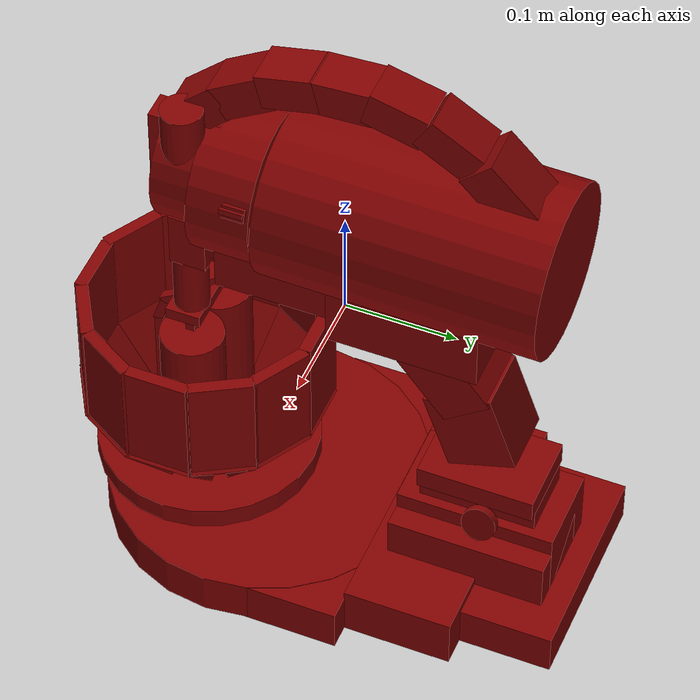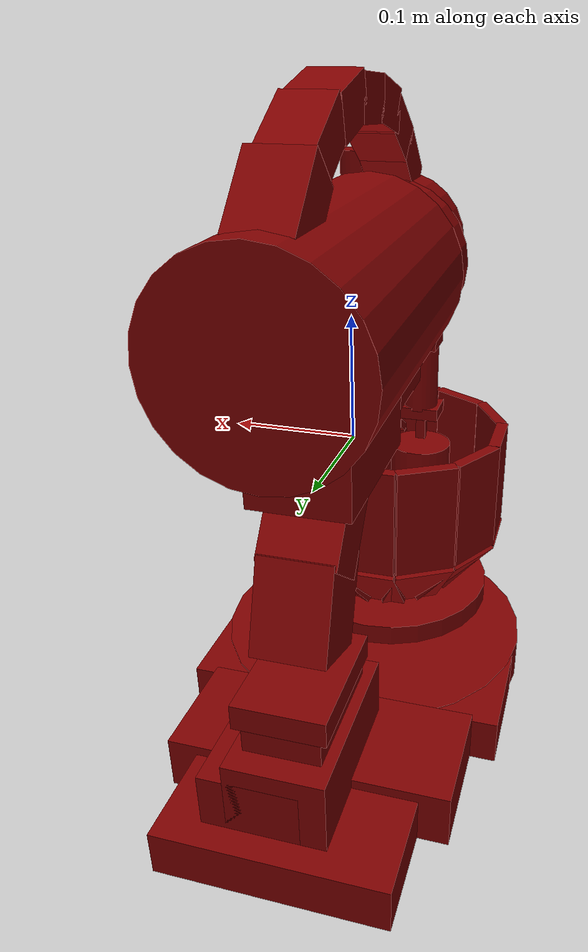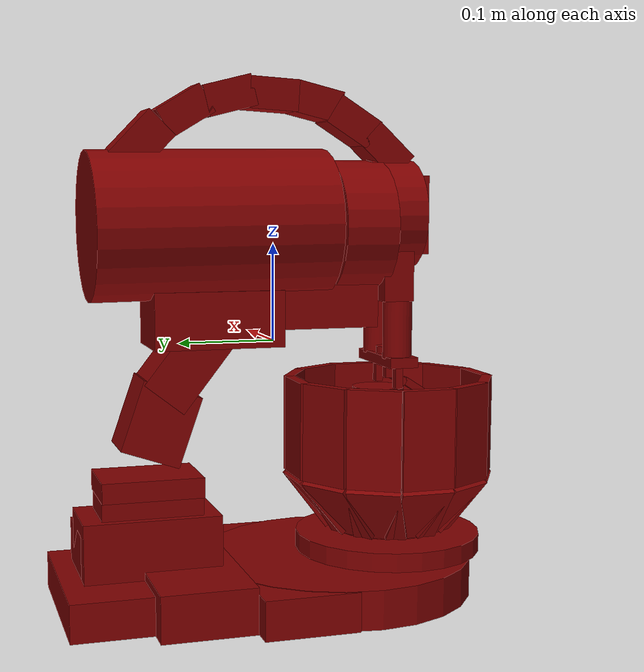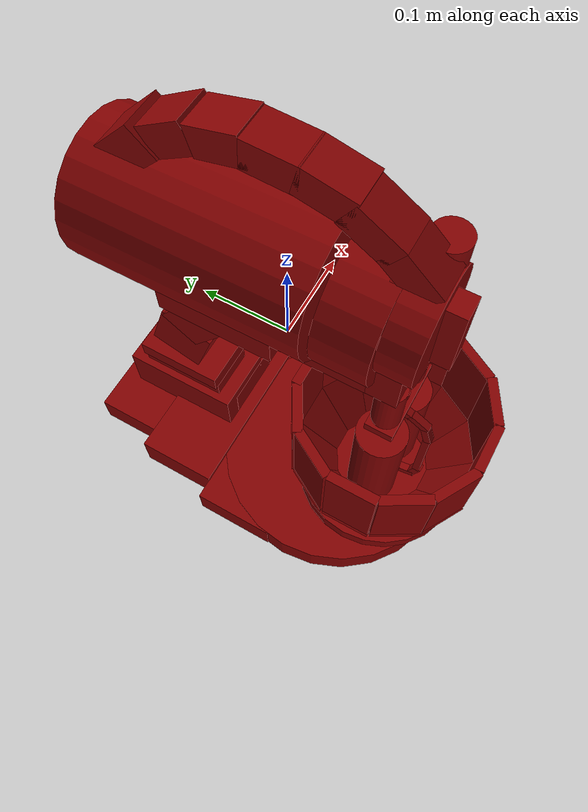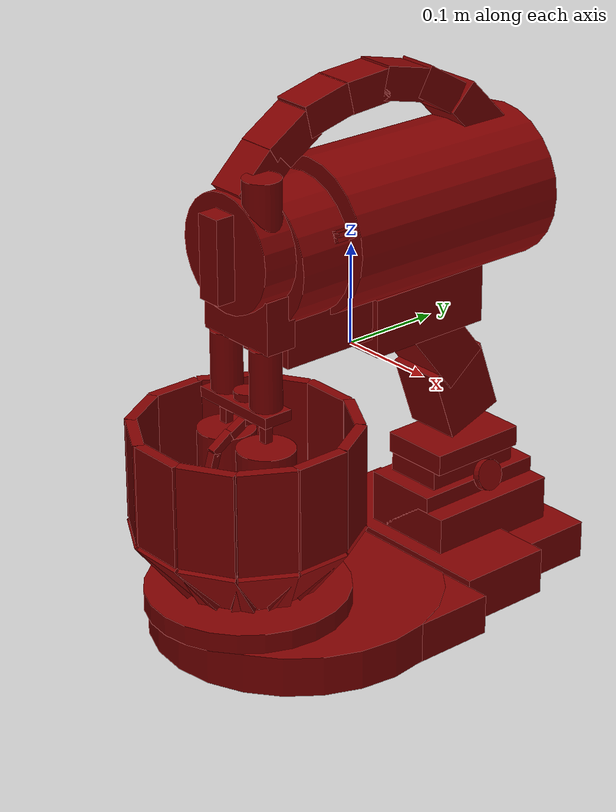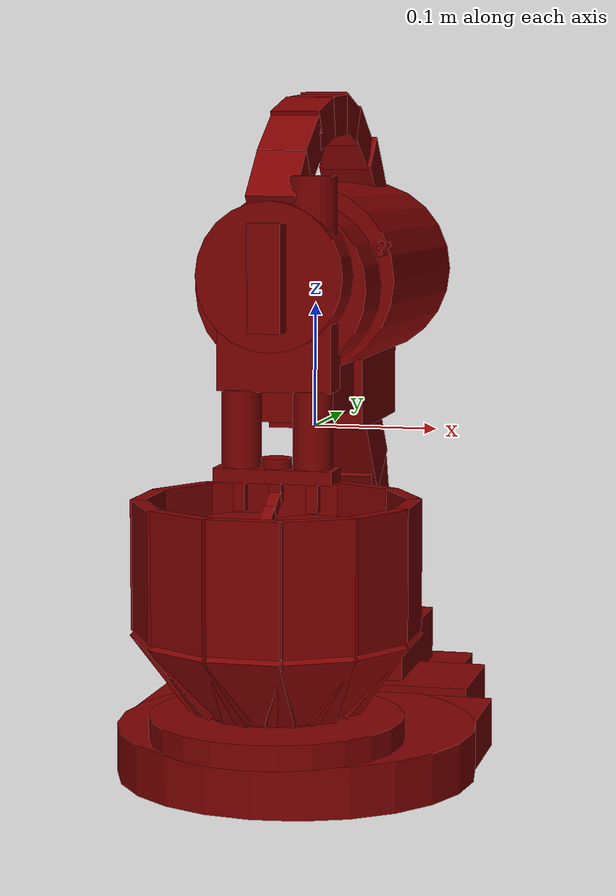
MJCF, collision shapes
<?xml version='1.0' encoding='UTF-8'?>
<mujoco model="model">
  <option timestep="0.002" gravity="0.0 0.0 -9.81"/>
  <compiler angle="radian"/>
  <asset>
    <mesh file="visuals/Blender001.obj" name="Blender001_vis"/>
    <mesh file="visuals/Blender002.obj" name="Blender002_vis"/>
    <mesh file="visuals/Body001.obj" name="Body001_vis"/>
    <mesh file="visuals/Button001.obj" name="Button001_vis"/>
    <mesh file="visuals/Container001.obj" name="Container001_vis"/>
    <mesh file="visuals/Knob001.obj" name="Knob001_vis"/>
    <mesh file="visuals/Lid001.obj" name="Lid001_vis"/>
    <texture file="visuals/T_BC001.png" name="Body001_material" type="2d"/>
    <material name="Body001_material" rgba="1 1 1 1.0" texture="Body001_material" shininess="0.5" specular="0.3103448502657381"/>
    <texture file="visuals/T_BC001.png" name="Button001_material" type="2d"/>
    <material name="Button001_material" rgba="1 1 1 1.0" texture="Button001_material" shininess="0.5" specular="0.3103448502657381"/>
    <texture file="visuals/T_BC001.png" name="Container001_material" type="2d"/>
    <material name="Container001_material" rgba="1 1 1 1.0" texture="Container001_material" shininess="0.5" specular="2"/>
    <texture file="visuals/T_BC001.png" name="Lid001_material" type="2d"/>
    <material name="Lid001_material" rgba="1 1 1 1.0" texture="Lid001_material" shininess="0.5" specular="0.3103448502657381"/>
    <texture file="visuals/T_BC001.png" name="Blender001_material" type="2d"/>
    <material name="Blender001_material" rgba="1 1 1 1.0" texture="Blender001_material" shininess="0.5" specular="1"/>
    <texture file="visuals/T_BC001.png" name="Blender002_material" type="2d"/>
    <material name="Blender002_material" rgba="1 1 1 1.0" texture="Blender002_material" shininess="0.5" specular="1"/>
    <texture file="visuals/T_BC001.png" name="Knob001_material" type="2d"/>
    <material name="Knob001_material" rgba="1 1 1 1.0" texture="Knob001_material" shininess="0.5" specular="0.5"/>
  </asset>
  <default>
    <default class="visual">
      <geom conaffinity="0" contype="0" group="1" type="mesh"/>
    </default>
    <default class="collision">
      <geom group="0" rgba="0.5 0 0 0.5"/>
    </default>
    <default class="spawn">
      <geom group="0" rgba="1 1 1 0.5" contype="0" conaffinity="0"/>
      <site group="0" rgba="1 1 1 0.5"/>
    </default>
    <default class="region">
      <geom group="1" conaffinity="0" contype="0" rgba="0 1 0 0"/>
    </default>
  </default>
  <worldbody>
    <body>
      <body name="object">
        <geom mesh="Body001_vis" type="mesh" solimp="0.998 0.998 0.001" solref="0.001 1" friction="0.95 0.3 0.1" class="visual" material="Body001_material"/>
        <geom class="collision" type="cylinder" pos="0.000000 -0.128824 -0.220151" size="0.0993005633354187 0.009739317931234837" quat="0.7071067094802856 0.0 0.0 -0.7071068286895752" density="1000.0"/>
        <geom class="collision" type="cylinder" pos="0.001597 -0.070675 -0.250930" size="0.14353418350219727 0.01999838836491108" quat="0.7071067094802856 0.0 0.0 -0.7071068286895752" density="1000.0"/>
        <geom class="collision" type="box" pos="0.000000 0.000310 -0.251610" size="0.13999146223068237 0.048502832651138306 0.02011392079293728" quat="1.0 0.0 0.0 0.0" density="1000.0"/>
        <geom class="collision" type="box" pos="0.000000 0.096778 -0.248472" size="0.11802537739276886 0.048502132296562195 0.023700427263975143" quat="1.0 0.0 0.0 0.0" density="1000.0"/>
        <geom class="collision" type="box" pos="0.000000 0.185658 -0.252689" size="0.09285704791545868 0.0422094464302063 0.019484205171465874" quat="1.0 0.0 0.0 0.0" density="1000.0"/>
        <geom class="collision" type="box" pos="0.000000 0.135393 -0.203240" size="0.039346687495708466 0.07086953520774841 0.030786722898483276" quat="1.0 0.0 0.0 0.0" density="1000.0"/>
        <geom class="collision" type="box" pos="0.000000 0.134133 -0.152800" size="0.030359217897057533 0.05225202068686485 0.019947011023759842" quat="1.0 0.0 0.0 0.0" density="1000.0"/>
        <geom class="collision" type="box" pos="0.020409 0.135393 -0.211077" size="0.03934694454073906 0.07086953520774841 0.022950543090701103" quat="1.0 0.0 0.0 0.0" density="1000.0"/>
        <geom class="collision" type="box" pos="0.001605 0.134133 -0.143237" size="0.03636309504508972 0.0522521436214447 0.010446240194141865" quat="1.0 0.0 0.0 0.0" density="1000.0"/>
        <body name="Button001">
          <joint axis="-0.972398042678833 0.0 -0.23332831263542175" pos="0.040669 0.141369 -0.170450" limited="true" name="Button001_joint" range="0.0 0.003" type="slide" damping="1" frictionloss="1" armature=".01" stiffness="0.5" springref="-0.5"/>
          <geom mesh="Button001_vis" type="mesh" solimp="0.998 0.998 0.001" solref="0.001 1" friction="0.95 0.3 0.1" class="visual" material="Button001_material"/>
          <geom class="collision" type="cylinder" pos="0.043666 0.141795 -0.169974" size="0.015489477664232254 0.003840031800791621" quat="0.8005008101463318 -1.8275068125461758e-09 0.5993316769599915 2.5640383150005164e-09" density="1000.0"/>
        </body>
        <body name="Container001">
          <joint axis="0.0 0.0 1.0" pos="0.000000 -0.128824 -0.151364" limited="true" name="Container001_joint" range="0.0 0.05" type="slide" damping="1" frictionloss="1" armature=".01" stiffness="0.05"/>
          <geom mesh="Container001_vis" type="mesh" solimp="0.998 0.998 0.001" solref="0.001 1" friction="0.95 0.3 0.1" class="visual" material="Container001_material"/>
          <geom class="collision" type="cylinder" pos="0.000000 -0.128824 -0.204750" size="0.05979258567094803 0.0018684215610846877" quat="0.70710688829422 0.0 0.0 0.7071066498756409" density="1000.0"/>
          <geom class="collision" type="box" pos="0.002113 -0.231572 -0.092889" size="0.027677712962031364 0.005457268562167883 0.05090999975800514" quat="1.0 0.0 0.0 0.0" density="1000.0"/>
          <geom class="collision" type="box" pos="0.002113 -0.210162 -0.172863" size="0.005457259714603424 0.027677705511450768 0.037360746413469315" quat="0.6654353141784668 0.23915646970272064 -0.23915639519691467 0.6654353737831116" density="1000.0"/>
          <geom class="collision" type="box" pos="-0.049544 -0.218863 -0.092889" size="0.005457259714603424 0.027677711099386215 0.05090999975800514" quat="0.866025447845459 0.0 0.0 0.4999999701976776" density="1000.0"/>
          <geom class="collision" type="box" pos="-0.038839 -0.200321 -0.172863" size="0.005457259714603424 0.027677707374095917 0.037360746413469315" quat="0.8149885535240173 0.16910913586616516 -0.29290568828582764 0.4705337584018707" density="1000.0"/>
          <geom class="collision" type="box" pos="-0.087926 -0.182028 -0.092889" size="0.005457259714603424 0.027677709236741066 0.05091000348329544" quat="0.9659258127212524 0.0 0.0 0.2588190734386444" density="1000.0"/>
          <geom class="collision" type="box" pos="-0.069384 -0.171323 -0.172863" size="0.005457259714603424 0.027677705511450768 0.037360746413469315" quat="0.9090015888214111 0.08753731846809387 -0.3266938328742981 0.24356621503829956" density="1000.0"/>
          <geom class="collision" type="box" pos="-0.102748 -0.130937 -0.092889" size="0.005457266233861446 0.027677709236741066 0.05090999975800514" quat="1.0 0.0 0.0 0.0" density="1000.0"/>
          <geom class="collision" type="box" pos="-0.081338 -0.130937 -0.172863" size="0.005457259714603424 0.027677705511450768 0.037360746413469315" quat="0.9410676956176758 -1.4864680153436893e-08 -0.3382182717323303 -5.418909765353419e-08" density="1000.0"/>
          <geom class="collision" type="box" pos="-0.090039 -0.079280 -0.092889" size="0.005457259714603424 0.027677711099386215 0.05090999975800514" quat="0.9659258127212524 0.0 0.0 -0.2588191032409668" density="1000.0"/>
          <geom class="collision" type="box" pos="-0.071497 -0.089985 -0.172863" size="0.005457259714603424 0.027677705511450768 0.037360746413469315" quat="0.9090015888214111 -0.08753730356693268 -0.3266937732696533 -0.24356628954410553" density="1000.0"/>
          <geom class="collision" type="box" pos="-0.053204 -0.040898 -0.092889" size="0.005457259248942137 0.027677711099386215 0.05090999975800514" quat="0.8660253882408142 0.0 0.0 -0.5" density="1000.0"/>
          <geom class="collision" type="box" pos="-0.042499 -0.059440 -0.172863" size="0.005457259714603424 0.027677705511450768 0.037360746413469315" quat="0.8149885535240173 -0.16910910606384277 -0.2929055988788605 -0.4705338180065155" density="1000.0"/>
          <geom class="collision" type="box" pos="-0.002113 -0.026076 -0.092889" size="0.027677712962031364 0.005457268562167883 0.05090999975800514" quat="1.0 0.0 0.0 0.0" density="1000.0"/>
          <geom class="collision" type="box" pos="-0.002113 -0.047486 -0.172863" size="0.005457259714603424 0.027677705511450768 0.037360746413469315" quat="0.6654351949691772 -0.23915646970272064 -0.23915639519691467 -0.6654354929924011" density="1000.0"/>
          <geom class="collision" type="box" pos="0.049544 -0.038785 -0.092889" size="0.005457260180264711 0.027677711099386215 0.05091000348329544" quat="0.4999999701976776 0.0 0.0 -0.866025447845459" density="1000.0"/>
          <geom class="collision" type="box" pos="0.038839 -0.057327 -0.172863" size="0.005457259714603424 0.027677707374095917 0.037360746413469315" quat="0.4705338478088379 -0.2929055690765381 -0.16910910606384277 -0.8149885535240173" density="1000.0"/>
          <geom class="collision" type="box" pos="0.087926 -0.075620 -0.092889" size="0.005457259714603424 0.027677711099386215 0.05091000348329544" quat="0.25881895422935486 0.0 0.0 -0.9659258723258972" density="1000.0"/>
          <geom class="collision" type="box" pos="0.069384 -0.086325 -0.172863" size="0.005457259714603424 0.027677707374095917 0.037360746413469315" quat="0.24356628954410553 -0.32669374346733093 -0.08753740042448044 -0.9090015888214111" density="1000.0"/>
          <geom class="collision" type="box" pos="0.102748 -0.126711 -0.092889" size="0.0054572708904743195 0.027677712962031364 0.05090999975800514" quat="1.0 0.0 0.0 0.0" density="1000.0"/>
          <geom class="collision" type="box" pos="0.081338 -0.126711 -0.172863" size="0.005457259714603424 0.027677705511450768 0.037360746413469315" quat="5.555726190209498e-08 0.3382182717323303 1.7568849486337967e-08 0.9410676956176758" density="1000.0"/>
          <geom class="collision" type="box" pos="0.090039 -0.178368 -0.092889" size="0.005457260180264711 0.027677709236741066 0.05090999975800514" quat="0.2588190734386444 0.0 0.0 0.9659258127212524" density="1000.0"/>
          <geom class="collision" type="box" pos="0.071497 -0.167663 -0.172863" size="0.005457259714603424 0.027677707374095917 0.037360746413469315" quat="0.24356625974178314 0.32669374346733093 -0.08753732591867447 0.9090015888214111" density="1000.0"/>
          <geom class="collision" type="box" pos="0.053204 -0.216750 -0.092889" size="0.005457259248942137 0.027677711099386215 0.05090999975800514" quat="0.4999999701976776 0.0 0.0 0.866025447845459" density="1000.0"/>
          <geom class="collision" type="box" pos="0.042499 -0.198208 -0.172863" size="0.005457259714603424 0.027677707374095917 0.037360746413469315" quat="0.4705338776111603 0.29290571808815 -0.16910916566848755 0.8149884343147278" density="1000.0"/>
        </body>
        <body name="Lid001">
          <joint axis="-1.0 0.0 0.0" pos="0.002113 0.175892 -0.128950" limited="true" name="Lid001_joint" range="0.0 1.5707963267948966" type="hinge" damping="1" frictionloss="1" armature=".01" stiffness="0.05"/>
          <geom mesh="Lid001_vis" type="mesh" solimp="0.998 0.998 0.001" solref="0.001 1" friction="0.95 0.3 0.1" class="visual" material="Lid001_material"/>
          <geom class="collision" type="cylinder" pos="0.000000 0.069917 0.120765" size="0.07553092390298843 0.12249548733234406" quat="0.4969509541988373 -0.5030301213264465 0.5030722618103027 0.49690917134284973" density="1000.0"/>
          <geom class="collision" type="cylinder" pos="-0.001189 -0.085474 0.118385" size="0.06744355708360672 0.027656659483909607" quat="0.5000000596046448 -0.5 0.5 0.4999999701976776" density="1000.0"/>
          <geom class="collision" type="cylinder" pos="-0.001189 -0.124939 0.129266" size="0.05730089172720909 0.0234974455088377" quat="0.5000001788139343 -0.5000000596046448 0.4999999403953552 0.49999985098838806" density="1000.0"/>
          <geom class="collision" type="cylinder" pos="-0.028092 -0.127146 0.011325" size="0.015423283912241459 0.030910924077033997" quat="0.70710688829422 0.0 0.0 0.7071066498756409" density="1000.0"/>
          <geom class="collision" type="cylinder" pos="0.028292 -0.127146 0.011325" size="0.015423283912241459 0.030910924077033997" quat="0.70710688829422 0.0 0.0 0.7071066498756409" density="1000.0"/>
          <geom class="collision" type="cylinder" pos="-0.000215 -0.127146 -0.018024" size="0.011843170039355755 0.008213881403207779" quat="0.70710688829422 0.0 0.0 0.7071066498756409" density="1000.0"/>
          <geom class="collision" type="cylinder" pos="0.028948 -0.129402 0.182239" size="0.01828480139374733 0.022911718115210533" quat="0.7071067094802856 0.0 0.0 -0.7071068286895752" density="1000.0"/>
          <geom class="collision" type="box" pos="0.000000 0.065407 0.026446" size="0.03905344754457474 0.06689076125621796 0.028838833793997765" quat="1.0 0.0 0.0 0.0" density="1000.0"/>
          <geom class="collision" type="box" pos="0.000000 -0.049170 0.037921" size="0.0319354422390461 0.054699089378118515 0.023583194240927696" quat="1.0 0.0 0.0 0.0" density="1000.0"/>
          <geom class="collision" type="box" pos="0.000000 0.124150 -0.077709" size="0.031394146382808685 0.02908330224454403 0.037388209253549576" quat="0.69721919298172 0.11783666908740997 -0.11783668398857117 0.6972190737724304" density="1000.0"/>
          <geom class="collision" type="box" pos="0.000000 -0.128060 -0.022791" size="0.046673260629177094 0.015383935533463955 0.005404059775173664" quat="1.0 0.0 0.0 0.0" density="1000.0"/>
          <geom class="collision" type="box" pos="-0.000292 -0.128060 -0.031503" size="0.004436506889760494 0.004100261256098747 0.012434493750333786" quat="1.0 0.0 0.0 0.0" density="1000.0"/>
          <geom class="collision" type="box" pos="-0.028928 -0.128060 -0.039289" size="0.004436506889760494 0.004100264515727758 0.012434493750333786" quat="1.0 0.0 0.0 0.0" density="1000.0"/>
          <geom class="collision" type="box" pos="0.028563 -0.128060 -0.039289" size="0.004436506889760494 0.0041002677753567696 0.012434493750333786" quat="1.0 0.0 0.0 0.0" density="1000.0"/>
          <geom class="collision" type="box" pos="-0.000292 -0.136880 -0.043770" size="0.004100297577679157 0.004436505027115345 0.012434493750333786" quat="0.61094731092453 -0.3560101389884949 0.35600993037223816 0.6109477281570435" density="1000.0"/>
          <geom class="collision" type="box" pos="-0.000292 -0.157121 -0.054474" size="0.004100297577679157 0.004436505027115345 0.012434492819011211" quat="0.6206436157226562 -0.3388236165046692 0.3388236165046692 0.6206437349319458" density="1000.0"/>
          <geom class="collision" type="box" pos="-0.000292 -0.168840 -0.073244" size="0.004100297577679157 0.004436505027115345 0.012434493750333786" quat="0.6987792253494263 -0.10820181667804718 0.10820183902978897 0.6987791657447815" density="1000.0"/>
          <geom class="collision" type="box" pos="-0.000292 -0.171335 -0.125499" size="0.00443650595843792 0.004122056532651186 0.041983600705862045" quat="1.0 0.0 0.0 0.0" density="1000.0"/>
          <geom class="collision" type="box" pos="-0.000292 -0.169904 -0.175537" size="0.0041002980433404446 0.004436505027115345 0.012434493750333786" quat="0.6977085471153259 0.11490409821271896 -0.11490410566329956 0.6977083086967468" density="1000.0"/>
          <geom class="collision" type="box" pos="-0.000292 -0.158388 -0.187812" size="0.004100297577679157 0.004436505027115345 0.012434493750333786" quat="0.5595824122428894 0.4322817027568817 -0.4322812855243683 0.5595828294754028" density="1000.0"/>
          <geom class="collision" type="box" pos="0.000000 0.092874 -0.015681" size="0.04690190404653549 0.030521633103489876 0.02520126849412918" quat="0.6356257796287537 -0.30980589985847473 0.3098057508468628 0.6356261372566223" density="1000.0"/>
          <geom class="collision" type="box" pos="0.000000 -0.122283 0.067295" size="0.04467394948005676 0.01603887975215912 0.025931384414434433" quat="1.0 0.0 0.0 0.0" density="1000.0"/>
          <geom class="collision" type="box" pos="0.000000 -0.157058 0.129170" size="0.01267123781144619 0.01077638752758503 0.04105747863650322" quat="1.0 0.0 0.0 0.0" density="1000.0"/>
          <geom class="collision" type="box" pos="0.000000 0.139052 0.200354" size="0.029344329610466957 0.022228607907891273 0.018353836610913277" quat="0.6513049006462097 -0.27532148361206055 0.27532151341438293 0.6513049006462097" density="1000.0"/>
          <geom class="collision" type="box" pos="0.000000 0.094772 0.232856" size="0.025530321523547173 0.019339462742209435 0.015968309715390205" quat="0.6814349293708801 -0.18880237638950348 0.1888023316860199 0.6814351081848145" density="1000.0"/>
          <geom class="collision" type="box" pos="0.000000 0.049373 0.248672" size="0.025530319660902023 0.019339462742209435 0.015968309715390205" quat="0.7016568779945374 -0.08762177079916 0.08762177079916 0.7016569375991821" density="1000.0"/>
          <geom class="collision" type="box" pos="0.000000 0.003615 0.251011" size="0.025530319660902023 0.019339462742209435 0.015968309715390205" quat="0.7068054676055908 0.020641008391976357 -0.020641004666686058 0.7068054676055908" density="1000.0"/>
          <geom class="collision" type="box" pos="0.000000 -0.042265 0.244347" size="0.02553032711148262 0.019339462742209435 0.015968309715390205" quat="0.7023257613182068 0.0820889100432396 -0.0820889100432396 0.7023256421089172" density="1000.0"/>
          <geom class="collision" type="box" pos="0.000000 -0.081700 0.224357" size="0.025530319660902023 0.019339462742209435 0.015968309715390205" quat="0.6795504093170166 0.19547683000564575 -0.19547683000564575 0.6795504689216614" density="1000.0"/>
          <geom class="collision" type="box" pos="0.000000 -0.117967 0.195846" size="0.025530321523547173 0.019339462742209435 0.015968309715390205" quat="0.6572299599647522 0.26086151599884033 -0.2608613967895508 0.6572300791740417" density="1000.0"/>
          <body name="Blender001">
            <joint axis="0.0 0.0 1.0" pos="-0.028932 -0.128227 -0.124980" limited="false" name="Blender001_joint" range="0 360" type="hinge" damping="1" frictionloss="1" armature=".01" stiffness="0.05"/>
            <geom mesh="Blender001_vis" type="mesh" solimp="0.998 0.998 0.001" solref="0.001 1" friction="0.95 0.3 0.1" class="visual" material="Blender001_material"/>
            <geom class="collision" type="cylinder" pos="-0.028932 -0.128227 -0.124980" size="0.02816907875239849 0.06729777902364731" quat="0.70710688829422 0.0 0.0 0.7071066498756409" density="1000.0"/>
          </body>
          <body name="Blender002">
            <joint axis="0.0 0.0 1.0" pos="0.028826 -0.128227 -0.124971" limited="false" name="Blender002_joint" range="0 360" type="hinge" damping="1" frictionloss="1" armature=".01" stiffness="0.05"/>
            <geom mesh="Blender002_vis" type="mesh" solimp="0.998 0.998 0.001" solref="0.001 1" friction="0.95 0.3 0.1" class="visual" material="Blender002_material"/>
            <geom class="collision" type="cylinder" pos="0.028826 -0.128227 -0.124971" size="0.02816907875239849 0.06729777902364731" quat="0.70710688829422 0.0 0.0 0.7071066498756409" density="1000.0"/>
          </body>
          <body name="Knob001">
            <joint axis="0.0 -1.0 0.0" pos="-0.002570 -0.067443 0.117047" limited="true" name="Knob001_joint" range="0.0 0.8377580409572781" type="hinge" damping="0.05" armature="0.001" springref="-0.01"/>
            <geom mesh="Knob001_vis" type="mesh" solimp="0.998 0.998 0.001" solref="0.001 1" friction="0.95 0.3 0.1" class="visual" material="Knob001_material"/>
            <geom class="collision" type="box" pos="0.068034 -0.068413 0.147680" size="0.01002931222319603 0.0022196490317583084 0.005512468982487917" quat="0.6971321702003479 -0.11835025995969772 -0.11835024505853653 0.6971321105957031" density="1000.0"/>
            <geom class="collision" type="box" pos="0.070586 -0.068616 0.149980" size="0.010232232511043549 0.00208250992000103 0.003442030167207122" quat="0.5810648798942566 0.4029436707496643 0.4029437005519867 0.5810648798942566" density="1000.0"/>
          </body>
        </body>
        <geom class="region" name="reg_main" type="box" pos="0.0021130000000000038 0.006836999999999996 0.0" size="0.143724 0.22949799999999998 0.267996"/>
      </body>
    </body>
  </worldbody>
  <actuator>
    <motor name="Button001_joint_actuator" joint="Button001_joint" gear="0.5"/>
    <motor name="Container001_joint_actuator" joint="Container001_joint" gear="10"/>
    <motor name="Lid001_joint_actuator" joint="Lid001_joint" gear="10"/>
    <motor name="Blender001_joint_actuator" joint="Blender001_joint" gear="10"/>
    <motor name="Blender002_joint_actuator" joint="Blender002_joint" gear="10"/>
    <motor name="Knob001_joint_actuator" joint="Knob001_joint" gear="10"/>
  </actuator>
</mujoco>
